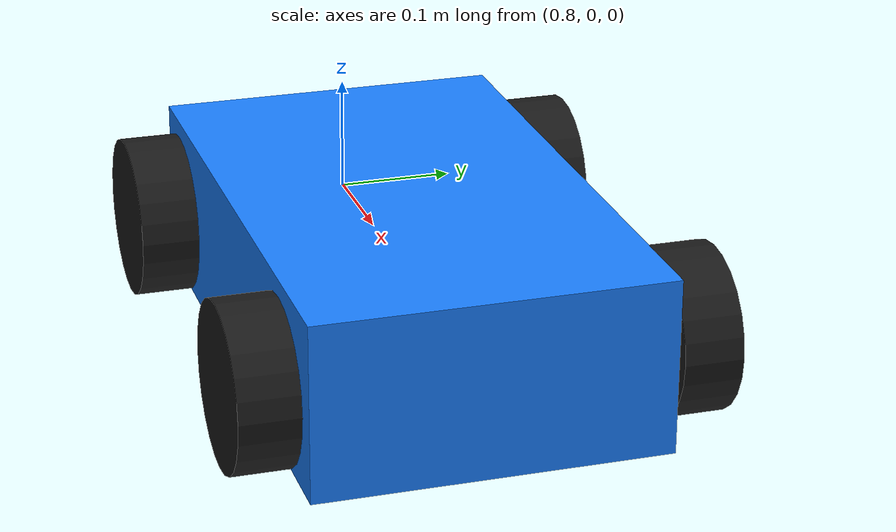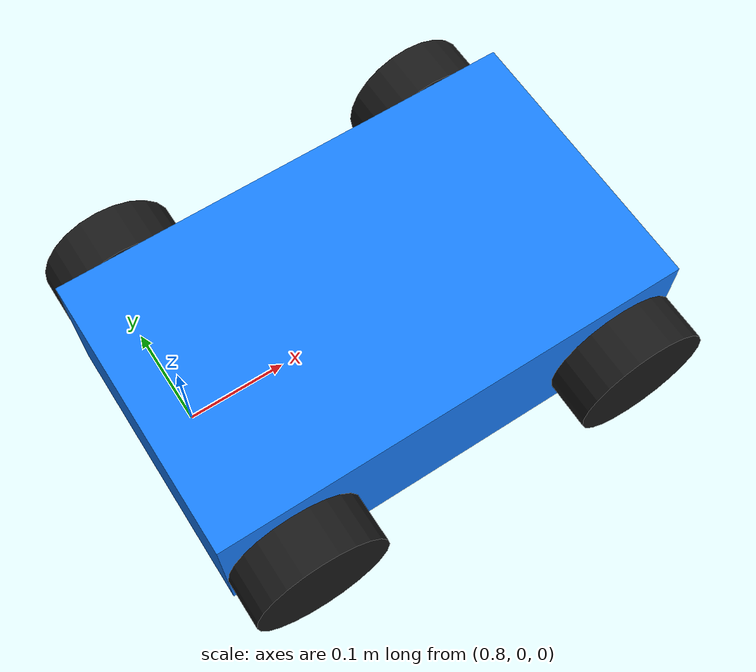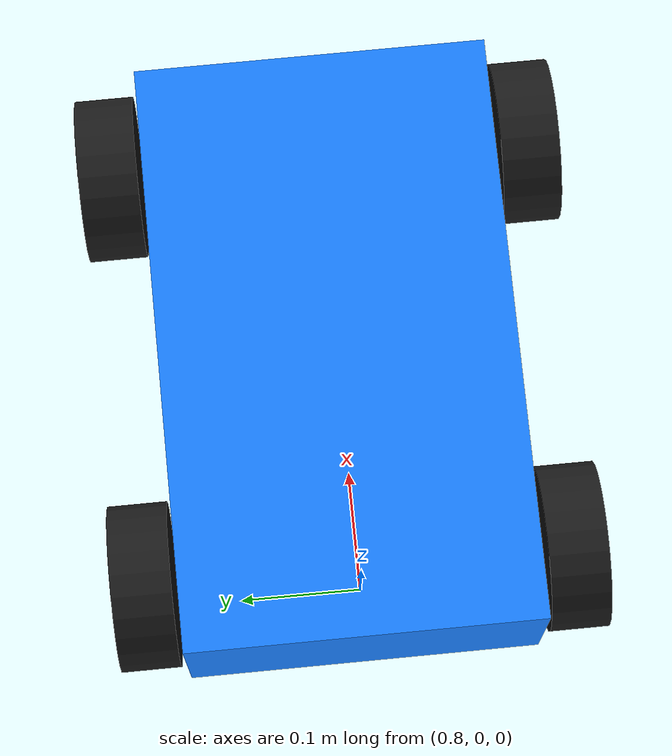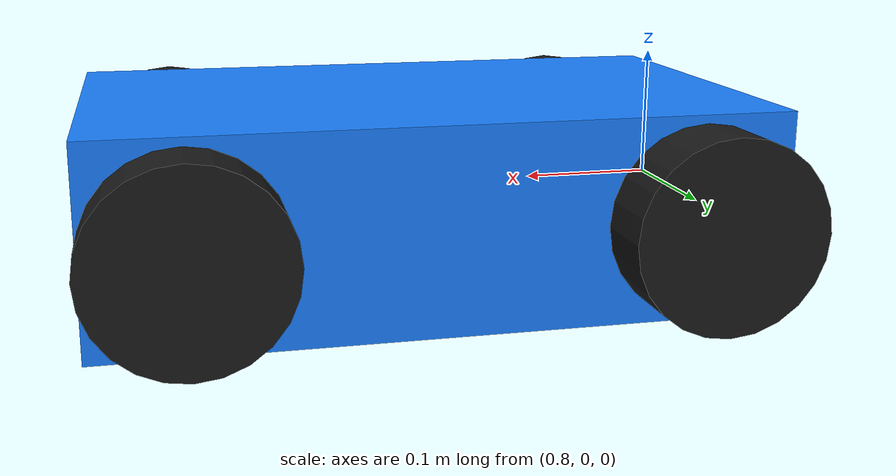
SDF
<?xml version="1.0" ?>
<sdf version="1.9">
  <model name="ground_vehicle">
    <!-- Posizione iniziale di spawn: 1 metro in direzione X, a terra -->
    <pose>1 0 0 0 0 0</pose>
    <static>false</static>   <!-- deve essere mobile per set_pose -->
    <!-- Carrozzeria principale -->
    <link name="body">
      <pose>0 0 0 0 0 0</pose>
      <inertial>
        <mass>5.0</mass>
        <inertia><ixx>0.1</ixx><iyy>0.1</iyy><izz>0.1</izz></inertia>
      </inertial>
      <visual name="body_vis">
        <geometry>
          <box><size>0.5 0.3 0.15</size></box>
        </geometry>
        <material>
          <ambient>0.1 0.5 1.0 1</ambient>
          <diffuse>0.1 0.5 1.0 1</diffuse>
          <specular>0.3 0.3 0.3 1</specular>
        </material>
      </visual>
      <collision name="body_col">
        <geometry><box><size>0.5 0.3 0.15</size></box></geometry>
      </collision>
      <!-- Ruota anteriore sinistra -->
      <visual name="wheel_fl">
        <pose>0.18 0.18 0 1.5708 0 0</pose>
        <geometry><cylinder><radius>0.07</radius><length>0.05</length></cylinder></geometry>
        <material><ambient>0.1 0.1 0.1 1</ambient><diffuse>0.1 0.1 0.1 1</diffuse></material>
      </visual>
      <!-- Ruota anteriore destra -->
      <visual name="wheel_fr">
        <pose>0.18 -0.18 0 1.5708 0 0</pose>
        <geometry><cylinder><radius>0.07</radius><length>0.05</length></cylinder></geometry>
        <material><ambient>0.1 0.1 0.1 1</ambient><diffuse>0.1 0.1 0.1 1</diffuse></material>
      </visual>
      <!-- Ruota posteriore sinistra -->
      <visual name="wheel_rl">
        <pose>-0.18 0.18 0 1.5708 0 0</pose>
        <geometry><cylinder><radius>0.07</radius><length>0.05</length></cylinder></geometry>
        <material><ambient>0.1 0.1 0.1 1</ambient><diffuse>0.1 0.1 0.1 1</diffuse></material>
      </visual>
      <!-- Ruota posteriore destra -->
      <visual name="wheel_rr">
        <pose>-0.18 -0.18 0 1.5708 0 0</pose>
        <geometry><cylinder><radius>0.07</radius><length>0.05</length></cylinder></geometry>
        <material><ambient>0.1 0.1 0.1 1</ambient><diffuse>0.1 0.1 0.1 1</diffuse></material>
      </visual>
    </link>
  </model>
</sdf>
